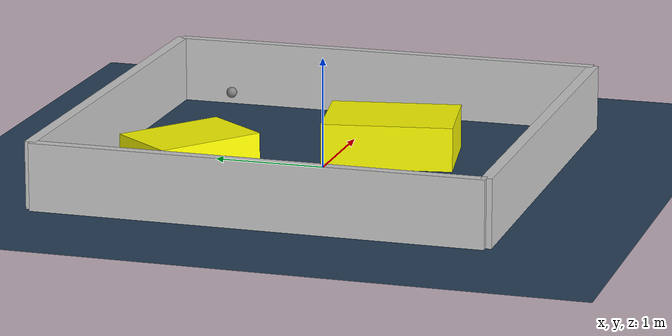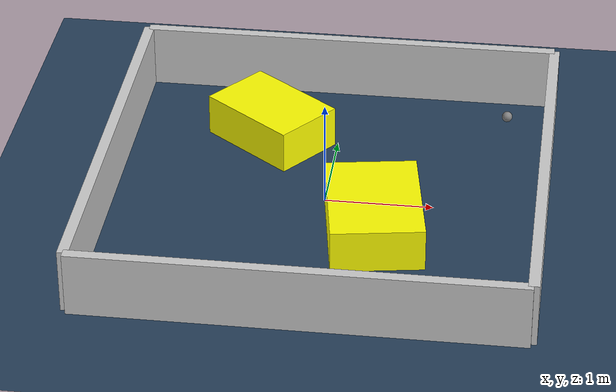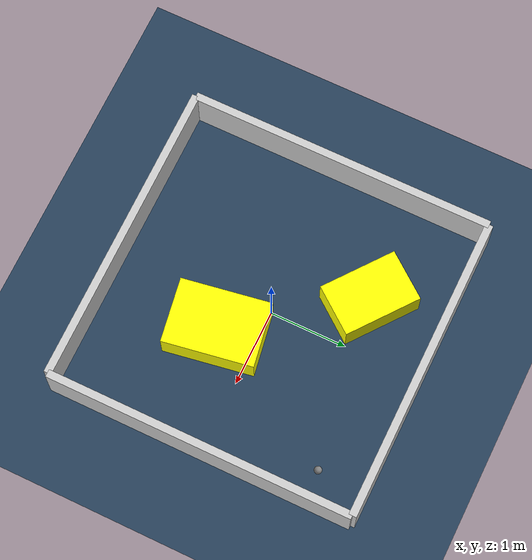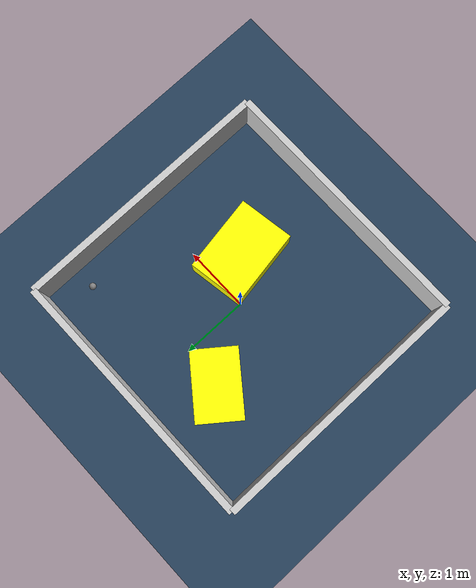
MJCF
<?xml version="1.0" ?>
<mujoco model="generated_environment">
  <option timestep="0.01" integrator="RK4" cone="elliptic"/>
  <default>
    <geom density="1"/>
  </default>
  <asset>
    <texture builtin="gradient" height="3072" rgb1="0.3 0.5 0.7" rgb2="0 0 0" type="skybox" width="512"/>
    <texture builtin="checker" height="300" mark="edge" markrgb="0.8 0.8 0.8" name="groundplane" rgb1="0.2 0.3 0.4" rgb2="0.1 0.2 0.3" type="2d" width="300"/>
    <material name="groundplane" reflectance="0.2" texrepeat="5 5" texture="groundplane" texuniform="true"/>
    <material name="robot" rgba="0.0 1.0 0.0 1"/>
  </asset>
  <worldbody>
    <light dir="0 0 -1" directional="true" pos="0 0 1.5"/>
    <geom condim="4" friction="1.0 0.005 0.001" material="groundplane" name="floor" size="0 0 0.05" type="plane"/>
    <body name="walls">
      <geom name="wall_1" condim="4" pos="-2.0 0.0 0.3" rgba="0.800000011920929 0.800000011920929 0.800000011920929 1.0" size="0.05 2.0 0.3" type="box"/>
      <geom name="wall_2" condim="4" pos="2.0 0.0 0.3" rgba="0.800000011920929 0.800000011920929 0.800000011920929 1.0" size="0.05 2.0 0.3" type="box"/>
      <geom name="wall_3" condim="4" pos="0.0 -2.0 0.3" rgba="0.800000011920929 0.800000011920929 0.800000011920929 1.0" size="2.0 0.05 0.3" type="box"/>
      <geom name="wall_4" condim="4" pos="0.0 2.0 0.3" rgba="0.800000011920929 0.800000011920929 0.800000011920929 1.0" size="2.0 0.05 0.3" type="box"/>
    </body>
    <body name="robot">
      <joint name="joint_x" type="slide" pos="0 0 0" axis="1 0 0"/>
      <joint name="joint_y" type="slide" pos="0 0 0" axis="0 1 0"/>
      <geom name="robot" type="sphere" pos="1.5924007709633767 1.3772074449241125 0.2" size="0.05" mass="5." friction="1.0 0.005 0.0001" condim="4"/>
      <site name="sensor_ball"/>
    </body>
    <body name="obstacle_1_movable">
      <geom name="obstacle_1_movable" condim="4" pos="0.5037551661365529 -0.49134149703105834 0.2" euler="0 0 99.37093527101408" friction="1.0 0.005 0.001" rgba="1 1 0 1" size="0.5890146849030418 0.42245497347734395 0.2" type="box" mass="0.1"/>
      <joint type="free"/>
    </body>
    <body name="obstacle_2_movable">
      <geom name="obstacle_2_movable" condim="4" pos="-0.642133497901326 1.0307131620243724 0.2" euler="0 0 142.27837918814237" friction="1.0 0.005 0.001" rgba="1 1 0 1" size="0.511387493262178 0.3436675842879915 0.2" type="box" mass="0.1"/>
      <joint type="free"/>
    </body>
  </worldbody>
  <actuator>
    <motor name="actuator_x" joint="joint_x" gear="1" ctrlrange="-1 1"/>
    <motor name="actuator_y" joint="joint_y" gear="1" ctrlrange="-1 1"/>
  </actuator>
</mujoco>
